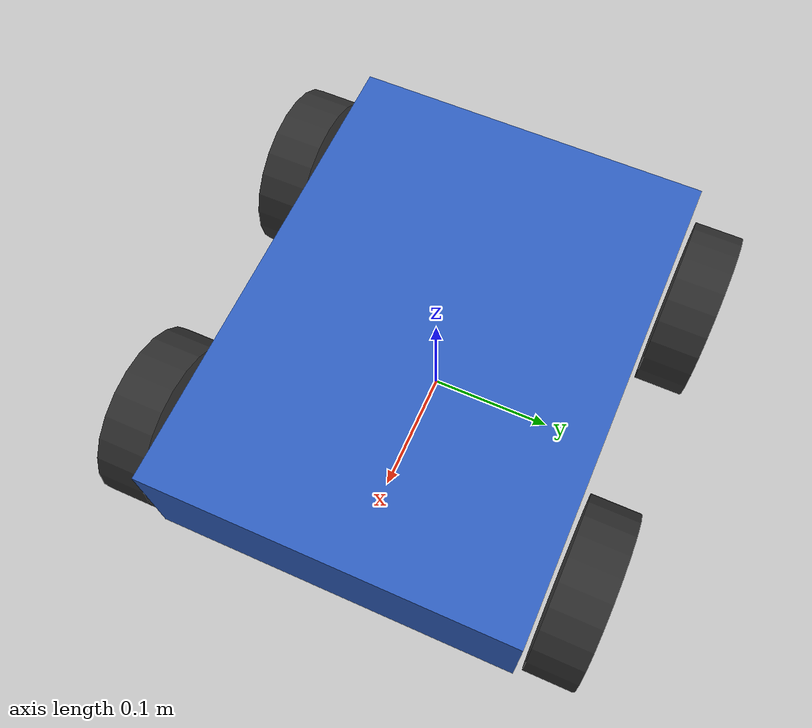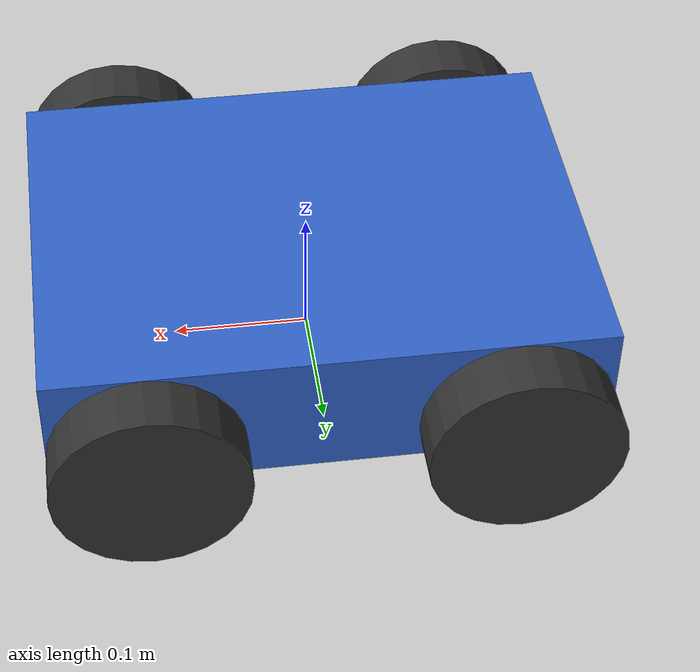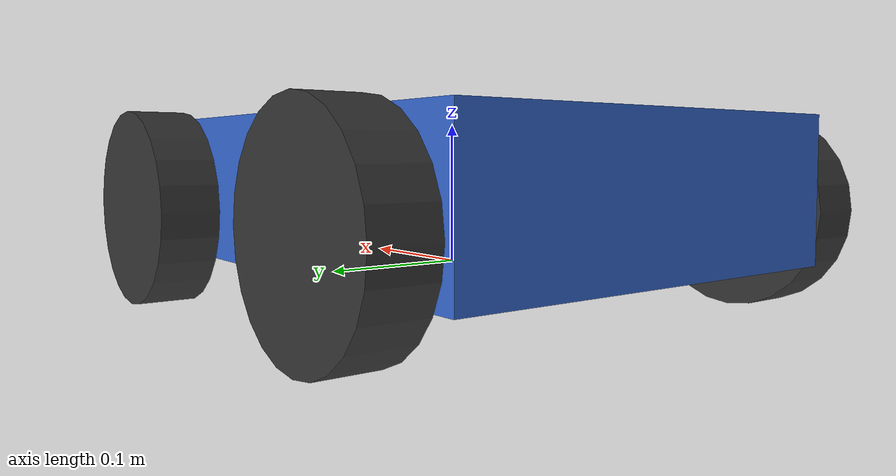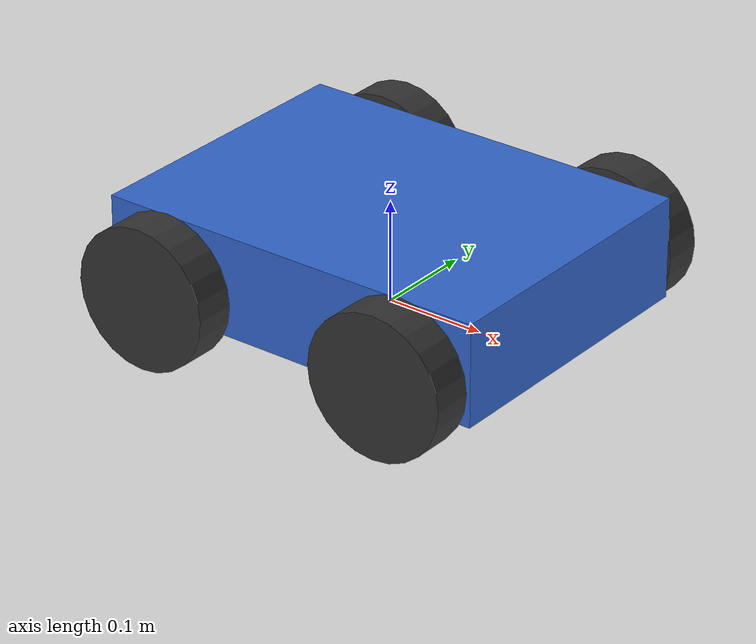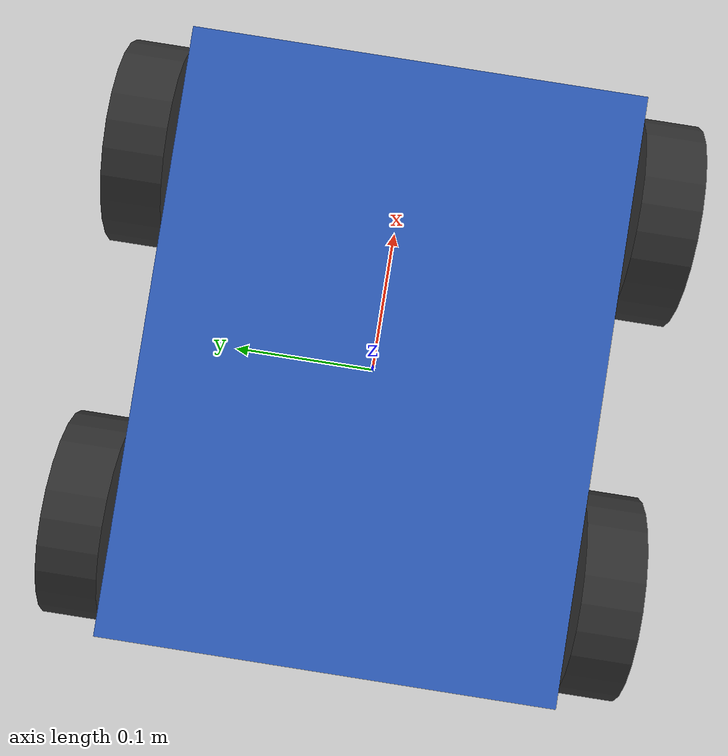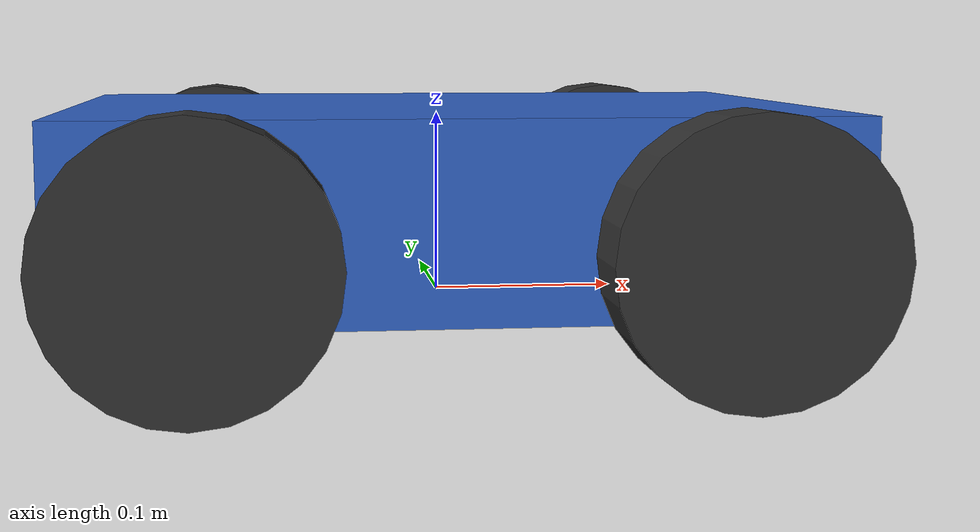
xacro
<?xml version="1.0"?>
<robot xmlns:xacro="http://www.ros.org/wiki/xacro">

  <!-- ==================== Robot Properties ==================== -->
  <xacro:property name="chassis_mass"  value="5.0" />
  <xacro:property name="chassis_length" value="0.40" />
  <xacro:property name="chassis_width"  value="0.30" />
  <xacro:property name="chassis_height" value="0.10" />

  <xacro:property name="wheel_mass"   value="0.5" />
  <xacro:property name="wheel_radius" value="0.07" />
  <xacro:property name="wheel_width"  value="0.04" />

  <!-- Wheel positions relative to chassis centre -->
  <xacro:property name="wheel_x_offset" value="0.13" />   <!-- front/rear distance -->
  <xacro:property name="wheel_y_offset" value="0.175" />  <!-- left/right distance -->
  <xacro:property name="wheel_z_offset" value="-0.015" /> <!-- height offset -->

  <!-- ==================== Inertia Macros ==================== -->
  <xacro:macro name="box_inertia" params="m l w h">
    <inertial>
      <origin xyz="0 0 0" rpy="0 0 0"/>
      <mass value="${m}"/>
      <inertia ixx="${(m/12)*(w*w + h*h)}" ixy="0" ixz="0"
               iyy="${(m/12)*(l*l + h*h)}" iyz="0"
               izz="${(m/12)*(l*l + w*w)}"/>
    </inertial>
  </xacro:macro>

  <xacro:macro name="cylinder_inertia" params="m r h">
    <inertial>
      <origin xyz="0 0 0" rpy="0 0 0"/>
      <mass value="${m}"/>
      <inertia ixx="${(m/12)*(3*r*r + h*h)}" ixy="0" ixz="0"
               iyy="${(m/12)*(3*r*r + h*h)}" iyz="0"
               izz="${(m/2)*(r*r)}"/>
    </inertial>
  </xacro:macro>

  <!-- ==================== Wheel Macro ==================== -->
  <xacro:macro name="wheel" params="name x_pos y_pos z_pos">
    <link name="${name}_wheel">
      <visual>
        <geometry>
          <cylinder radius="${wheel_radius}" length="${wheel_width}"/>
        </geometry>
        <origin xyz="0 0 0" rpy="${pi/2} 0 0"/>
        <material name="dark_grey">
          <color rgba="0.2 0.2 0.2 1.0"/>
        </material>
      </visual>
      <collision>
        <geometry>
          <cylinder radius="${wheel_radius}" length="${wheel_width}"/>
        </geometry>
        <origin xyz="0 0 0" rpy="${pi/2} 0 0"/>
      </collision>
      <xacro:cylinder_inertia m="${wheel_mass}" r="${wheel_radius}" h="${wheel_width}"/>
    </link>

    <joint name="${name}_wheel_joint" type="continuous">
      <parent link="base_link"/>
      <child  link="${name}_wheel"/>
      <origin xyz="${x_pos} ${y_pos} ${z_pos}" rpy="0 0 0"/>
      <axis xyz="0 1 0"/>
      <dynamics damping="0.1" friction="0.1"/>
    </joint>
  </xacro:macro>

  <!-- ==================== Base Footprint ==================== -->
  <link name="base_footprint"/>

  <joint name="base_footprint_joint" type="fixed">
    <parent link="base_footprint"/>
    <child  link="base_link"/>
    <origin xyz="0 0 ${wheel_radius + wheel_z_offset}" rpy="0 0 0"/>
  </joint>

  <!-- ==================== Chassis ==================== -->
  <link name="base_link">
    <visual>
      <geometry>
        <box size="${chassis_length} ${chassis_width} ${chassis_height}"/>
      </geometry>
      <origin xyz="0 0 0" rpy="0 0 0"/>
      <material name="blue">
        <color rgba="0.2 0.4 0.8 1.0"/>
      </material>
    </visual>
    <collision>
      <geometry>
        <box size="${chassis_length} ${chassis_width} ${chassis_height}"/>
      </geometry>
      <origin xyz="0 0 0" rpy="0 0 0"/>
    </collision>
    <xacro:box_inertia m="${chassis_mass}" l="${chassis_length}"
                        w="${chassis_width}" h="${chassis_height}"/>
  </link>

  <!-- ==================== Four Wheels ==================== -->
  <xacro:wheel name="front_left"
               x_pos=" ${wheel_x_offset}"
               y_pos=" ${wheel_y_offset}"
               z_pos=" ${wheel_z_offset}"/>

  <xacro:wheel name="front_right"
               x_pos=" ${wheel_x_offset}"
               y_pos="-${wheel_y_offset}"
               z_pos=" ${wheel_z_offset}"/>

  <xacro:wheel name="rear_left"
               x_pos="-${wheel_x_offset}"
               y_pos=" ${wheel_y_offset}"
               z_pos=" ${wheel_z_offset}"/>

  <xacro:wheel name="rear_right"
               x_pos="-${wheel_x_offset}"
               y_pos="-${wheel_y_offset}"
               z_pos=" ${wheel_z_offset}"/>

</robot>
